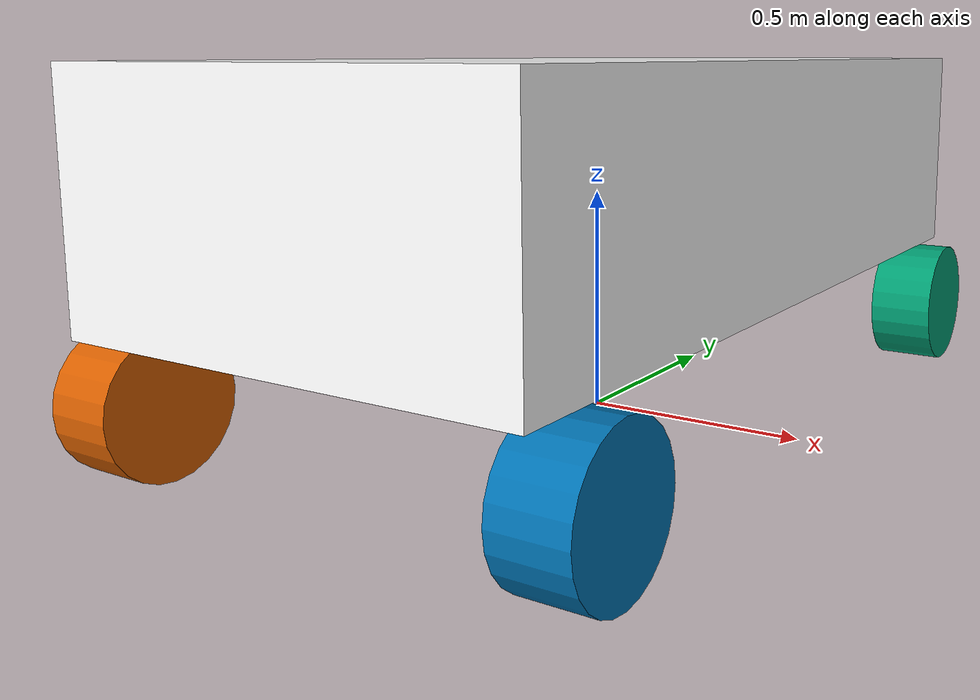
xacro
<?xml version="1.0"?>
<robot xmlns:xacro="http://www.ros.org/wiki/xacro" name="simple_robot">

  <xacro:include filename="$(find my_robot_description)/urdf/gazebo.xacro"/>

  <link name="world"/>

  <!-- Chassis -->
  <link name="base_link">
    <visual>
      <origin xyz="0 0 0.55"/>
      <geometry>
        <box size="1 2 0.5"/>
      </geometry>

      <material name="white">
        <color rgba="1 1 1 1"/>
      </material>
    </visual>

    <collision>
      <origin xyz="0 0 0.55"/>
      <geometry>
        <box size="1 2 0.5"/>
      </geometry>
    </collision>

    <inertial>
      <origin xyz="0 0 0.55" rpy="0 0 0"/>
      <mass value="10.0"/>
      <inertia
      ixx="3.54"
      ixy="0.0"
      ixz="0.0"
      iyy="1.04"
      iyz="0.0"
      izz="4.17"/>
    </inertial>
  </link>
  <joint name="world_to_base" type="fixed">
    <parent link="world"/>
    <child link="base_link"/>
    <origin xyz="0 0 0" rpy="0 0 0"/>
  </joint>

  <!-- Top Left Wheel -->
  <link name="topleftwheel_link">
    <visual>
      <origin xyz="0 0 0" rpy="1.5708 0 1.5708"/>
      <geometry>
        <cylinder radius="0.15" length="0.15"/>
      </geometry>
    </visual>
    <collision>
      <origin xyz="0 0 0" rpy="1.5708 0 1.5708"/>
      <geometry>
        <cylinder radius="0.15" length="0.15"/>
      </geometry>
    </collision>

    <inertial>
      <origin xyz="0 0 0" rpy="1.5708 0 1.5708"/>
      <mass value="1.0"/>
      <inertia
      ixx="0.006"
      ixy="0.0"
      ixz="0.0"
      iyy="0.006"
      iyz="0.0"
      izz="0.011"/>
    </inertial>

  </link>

  <joint name="topleftwheel_joint" type="continuous">
    <parent link="base_link"/>
    <child link="topleftwheel_link"/>
    <origin xyz="0.5 0.85 0.15"/>
    <axis xyz="1 0 0"/>
  </joint>

  <!-- Top Right Wheel -->
  <link name="toprightwheel_link">
    <visual>
      <origin xyz="0 0 0" rpy="1.5708 0 1.5708"/>
      <geometry>
        <cylinder radius="0.15" length="0.15"/>
      </geometry>
    </visual>
    <collision>
      <origin xyz="0 0 0" rpy="1.5708 0 1.5708"/>
      <geometry>
        <cylinder radius="0.15" length="0.15"/>
      </geometry>
    </collision>
    <inertial>
      <origin xyz="0 0 0" rpy="1.5708 0 1.5708"/>
      <mass value="1.0"/>
      <inertia
      ixx="0.006"
      ixy="0.0"
      ixz="0.0"
      iyy="0.006"
      iyz="0.0"
      izz="0.011"/>
    </inertial>
  </link>

  <joint name="toprightwheel_joint" type="continuous">
    <parent link="base_link"/>
    <child link="toprightwheel_link"/>
    <origin xyz="-0.5 0.85 0.15"/>
    <axis xyz="1 0 0"/>
  </joint>

  <!-- Bottom Left Wheel -->
  <link name="bottomleftwheel_link">
    <visual>
      <origin xyz="0 0 0" rpy="1.5708 0 1.5708"/>
      <geometry>
        <cylinder radius="0.15" length="0.15"/>
      </geometry>
    </visual>
    <collision>
      <origin xyz="0 0 0" rpy="1.5708 0 1.5708"/>
      <geometry>
        <cylinder radius="0.15" length="0.15"/>
      </geometry>
    </collision>
    <inertial>
      <origin xyz="0 0 0" rpy="1.5708 0 1.5708"/>
      <mass value="1.0"/>
      <inertia
      ixx="0.006"
      ixy="0.0"
      ixz="0.0"
      iyy="0.006"
      iyz="0.0"
      izz="0.011"/>
    </inertial>
  </link>

  <joint name="bottomleftwheel_joint" type="continuous">
    <parent link="base_link"/>
    <child link="bottomleftwheel_link"/>
    <origin xyz="0.5 -0.85 0.15"/>
    <axis xyz="1 0 0"/>
  </joint>

  <!-- Bottom Right Wheel -->
  <link name="bottomrightwheel_link">
    <visual>
      <origin xyz="0 0 0" rpy="1.5708 0 1.5708"/>
      <geometry>
        <cylinder radius="0.15" length="0.15"/>
      </geometry>
    </visual>
    <collision>
      <origin xyz="0 0 0" rpy="1.5708 0 1.5708"/>
      <geometry>
        <cylinder radius="0.15" length="0.15"/>
      </geometry>
    </collision>
    <inertial>
      <origin xyz="0 0 0" rpy="1.5708 0 1.5708"/>
      <mass value="1.0"/>
      <inertia
      ixx="0.006"
      ixy="0.0"
      ixz="0.0"
      iyy="0.006"
      iyz="0.0"
      izz="0.011"/>
    </inertial>
  </link>

  <joint name="bottomrightwheel_joint" type="continuous">
    <parent link="base_link"/>
    <child link="bottomrightwheel_link"/>
    <origin xyz="-0.5 -0.85 0.15"/>
    <axis xyz="1 0 0"/>
  </joint>

</robot>
